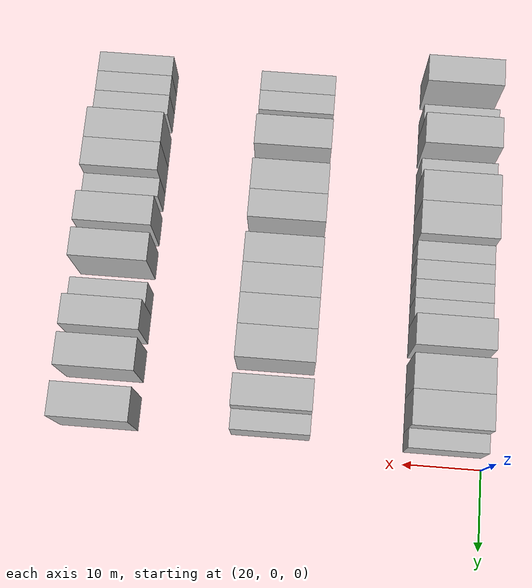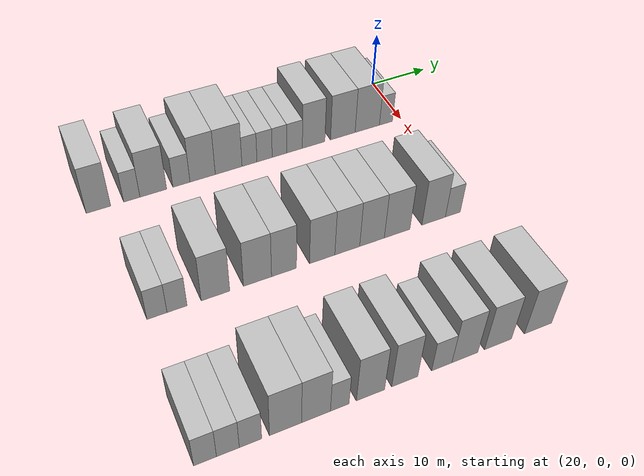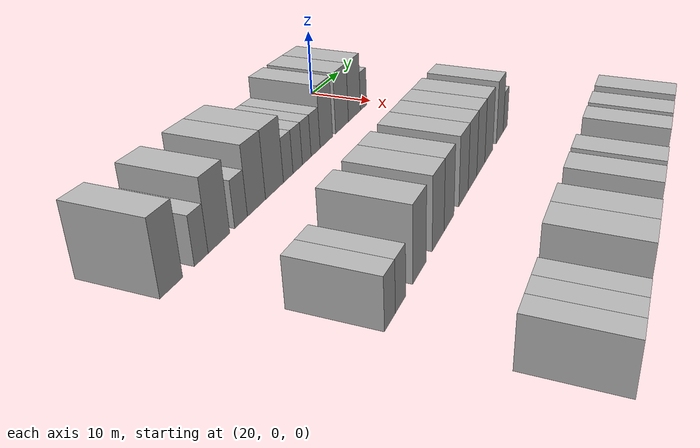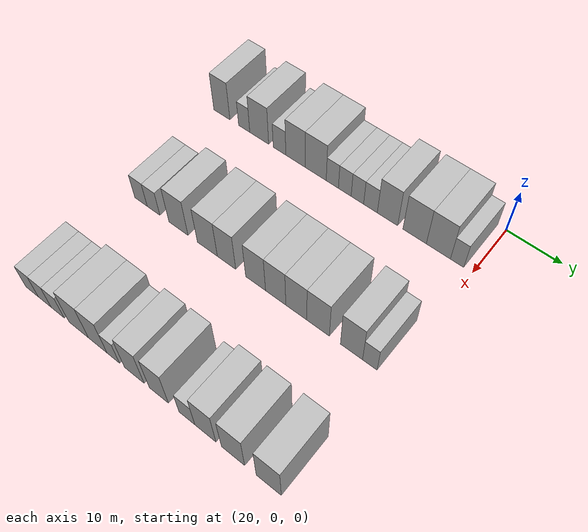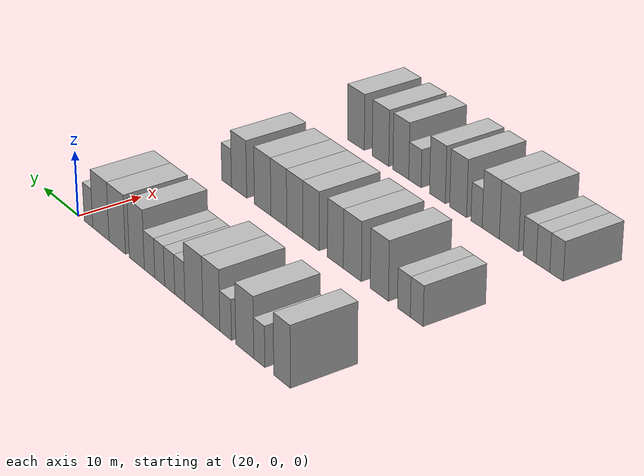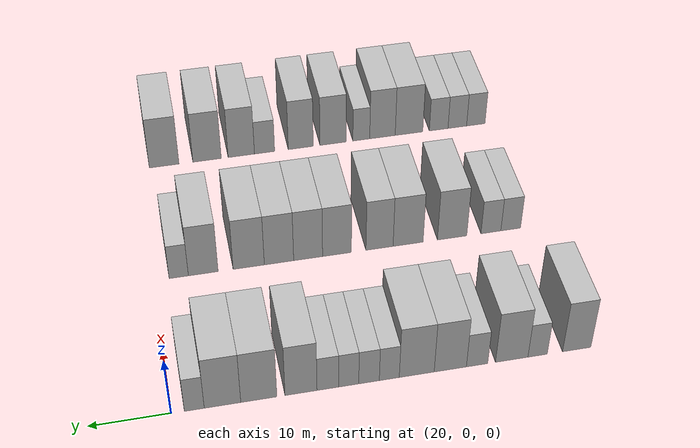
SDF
<sdf version="1.6">
 <world name="default">
  <model name="building_53">
   <static>1</static>
   <pose>25.0000 -51.0194 0 0.000000 0.000000 0.000000</pose>
   <link name="link">
    <pose>0 0 4.50 0 0 0</pose>
    <collision name="collision"><geometry><box><size>10.0000 3.7142 9.0000</size></box></geometry></collision>
    <visual name="visual">
     <cast_shadows>0</cast_shadows>
     <geometry><box><size>10.0000 3.7142 9.0000</size></box></geometry>
     <material>
      <script>
       <uri>model://HANNAS_wall/materials/scripts</uri>
       <uri>model://HANNAS_wall/materials/textures</uri>
       <name>vrc/HANNAS_wall</name>
      </script>
     </material>
    </visual>
   </link>
  </model>
  <model name="building_54">
   <static>1</static>
   <pose>25.0000 -45.9024 0 0.000000 0.000000 0.000000</pose>
   <link name="link">
    <pose>0 0 3.00 0 0 0</pose>
    <collision name="collision"><geometry><box><size>10.0000 2.5198 6.0000</size></box></geometry></collision>
    <visual name="visual">
     <cast_shadows>0</cast_shadows>
     <geometry><box><size>10.0000 2.5198 6.0000</size></box></geometry>
     <material>
      <script>
       <uri>model://HANNAS_wall/materials/scripts</uri>
       <uri>model://HANNAS_wall/materials/textures</uri>
       <name>vrc/HANNAS_wall</name>
      </script>
     </material>
    </visual>
   </link>
  </model>
  <model name="building_55">
   <static>1</static>
   <pose>25.0000 -42.5437 0 0.000000 0.000000 0.000000</pose>
   <link name="link">
    <pose>0 0 4.50 0 0 0</pose>
    <collision name="collision"><geometry><box><size>10.0000 4.1977 9.0000</size></box></geometry></collision>
    <visual name="visual">
     <cast_shadows>0</cast_shadows>
     <geometry><box><size>10.0000 4.1977 9.0000</size></box></geometry>
     <material>
      <script>
       <uri>model://HANNAS_wall/materials/scripts</uri>
       <uri>model://HANNAS_wall/materials/textures</uri>
       <name>vrc/HANNAS_wall</name>
      </script>
     </material>
    </visual>
   </link>
  </model>
  <model name="building_56">
   <static>1</static>
   <pose>25.0000 -38.0750 0 0.000000 0.000000 0.000000</pose>
   <link name="link">
    <pose>0 0 3.00 0 0 0</pose>
    <collision name="collision"><geometry><box><size>10.0000 2.7397 6.0000</size></box></geometry></collision>
    <visual name="visual">
     <cast_shadows>0</cast_shadows>
     <geometry><box><size>10.0000 2.7397 6.0000</size></box></geometry>
     <material>
      <script>
       <uri>model://HANNAS_wall/materials/scripts</uri>
       <uri>model://HANNAS_wall/materials/textures</uri>
       <name>vrc/HANNAS_wall</name>
      </script>
     </material>
    </visual>
   </link>
  </model>
  <model name="building_57">
   <static>1</static>
   <pose>25.0000 -34.6466 0 0.000000 0.000000 0.000000</pose>
   <link name="link">
    <pose>0 0 4.50 0 0 0</pose>
    <collision name="collision"><geometry><box><size>10.0000 4.1170 9.0000</size></box></geometry></collision>
    <visual name="visual">
     <cast_shadows>0</cast_shadows>
     <geometry><box><size>10.0000 4.1170 9.0000</size></box></geometry>
     <material>
      <script>
       <uri>model://HANNAS_wall/materials/scripts</uri>
       <uri>model://HANNAS_wall/materials/textures</uri>
       <name>vrc/HANNAS_wall</name>
      </script>
     </material>
    </visual>
   </link>
  </model>
  <model name="building_58">
   <static>1</static>
   <pose>25.0000 -30.3721 0 0.000000 0.000000 0.000000</pose>
   <link name="link">
    <pose>0 0 4.50 0 0 0</pose>
    <collision name="collision"><geometry><box><size>10.0000 4.4320 9.0000</size></box></geometry></collision>
    <visual name="visual">
     <cast_shadows>0</cast_shadows>
     <geometry><box><size>10.0000 4.4320 9.0000</size></box></geometry>
     <material>
      <script>
       <uri>model://HANNAS_wall/materials/scripts</uri>
       <uri>model://HANNAS_wall/materials/textures</uri>
       <name>vrc/HANNAS_wall</name>
      </script>
     </material>
    </visual>
   </link>
  </model>
  <model name="building_59">
   <static>1</static>
   <pose>25.0000 -26.8985 0 0.000000 0.000000 0.000000</pose>
   <link name="link">
    <pose>0 0 3.00 0 0 0</pose>
    <collision name="collision"><geometry><box><size>10.0000 2.5152 6.0000</size></box></geometry></collision>
    <visual name="visual">
     <cast_shadows>0</cast_shadows>
     <geometry><box><size>10.0000 2.5152 6.0000</size></box></geometry>
     <material>
      <script>
       <uri>model://HANNAS_wall/materials/scripts</uri>
       <uri>model://HANNAS_wall/materials/textures</uri>
       <name>vrc/HANNAS_wall</name>
      </script>
     </material>
    </visual>
   </link>
  </model>
  <model name="building_60">
   <static>1</static>
   <pose>25.0000 -24.3489 0 0.000000 0.000000 0.000000</pose>
   <link name="link">
    <pose>0 0 3.00 0 0 0</pose>
    <collision name="collision"><geometry><box><size>10.0000 2.5841 6.0000</size></box></geometry></collision>
    <visual name="visual">
     <cast_shadows>0</cast_shadows>
     <geometry><box><size>10.0000 2.5841 6.0000</size></box></geometry>
     <material>
      <script>
       <uri>model://HANNAS_wall/materials/scripts</uri>
       <uri>model://HANNAS_wall/materials/textures</uri>
       <name>vrc/HANNAS_wall</name>
      </script>
     </material>
    </visual>
   </link>
  </model>
  <model name="building_61">
   <static>1</static>
   <pose>25.0000 -21.8050 0 0.000000 0.000000 0.000000</pose>
   <link name="link">
    <pose>0 0 3.00 0 0 0</pose>
    <collision name="collision"><geometry><box><size>10.0000 2.5038 6.0000</size></box></geometry></collision>
    <visual name="visual">
     <cast_shadows>0</cast_shadows>
     <geometry><box><size>10.0000 2.5038 6.0000</size></box></geometry>
     <material>
      <script>
       <uri>model://HANNAS_wall/materials/scripts</uri>
       <uri>model://HANNAS_wall/materials/textures</uri>
       <name>vrc/HANNAS_wall</name>
      </script>
     </material>
    </visual>
   </link>
  </model>
  <model name="building_62">
   <static>1</static>
   <pose>25.0000 -19.1997 0 0.000000 0.000000 0.000000</pose>
   <link name="link">
    <pose>0 0 3.00 0 0 0</pose>
    <collision name="collision"><geometry><box><size>10.0000 2.7068 6.0000</size></box></geometry></collision>
    <visual name="visual">
     <cast_shadows>0</cast_shadows>
     <geometry><box><size>10.0000 2.7068 6.0000</size></box></geometry>
     <material>
      <script>
       <uri>model://HANNAS_wall/materials/scripts</uri>
       <uri>model://HANNAS_wall/materials/textures</uri>
       <name>vrc/HANNAS_wall</name>
      </script>
     </material>
    </visual>
   </link>
  </model>
  <model name="building_63">
   <static>1</static>
   <pose>25.0000 -15.8650 0 0.000000 0.000000 0.000000</pose>
   <link name="link">
    <pose>0 0 4.50 0 0 0</pose>
    <collision name="collision"><geometry><box><size>10.0000 3.9626 9.0000</size></box></geometry></collision>
    <visual name="visual">
     <cast_shadows>0</cast_shadows>
     <geometry><box><size>10.0000 3.9626 9.0000</size></box></geometry>
     <material>
      <script>
       <uri>model://HANNAS_wall/materials/scripts</uri>
       <uri>model://HANNAS_wall/materials/textures</uri>
       <name>vrc/HANNAS_wall</name>
      </script>
     </material>
    </visual>
   </link>
  </model>
  <model name="building_64">
   <static>1</static>
   <pose>25.0000 -10.6683 0 0.000000 0.000000 0.000000</pose>
   <link name="link">
    <pose>0 0 4.50 0 0 0</pose>
    <collision name="collision"><geometry><box><size>10.0000 4.4307 9.0000</size></box></geometry></collision>
    <visual name="visual">
     <cast_shadows>0</cast_shadows>
     <geometry><box><size>10.0000 4.4307 9.0000</size></box></geometry>
     <material>
      <script>
       <uri>model://HANNAS_wall/materials/scripts</uri>
       <uri>model://HANNAS_wall/materials/textures</uri>
       <name>vrc/HANNAS_wall</name>
      </script>
     </material>
    </visual>
   </link>
  </model>
  <model name="building_65">
   <static>1</static>
   <pose>25.0000 -6.2278 0 0.000000 0.000000 0.000000</pose>
   <link name="link">
    <pose>0 0 4.50 0 0 0</pose>
    <collision name="collision"><geometry><box><size>10.0000 4.4502 9.0000</size></box></geometry></collision>
    <visual name="visual">
     <cast_shadows>0</cast_shadows>
     <geometry><box><size>10.0000 4.4502 9.0000</size></box></geometry>
     <material>
      <script>
       <uri>model://HANNAS_wall/materials/scripts</uri>
       <uri>model://HANNAS_wall/materials/textures</uri>
       <name>vrc/HANNAS_wall</name>
      </script>
     </material>
    </visual>
   </link>
  </model>
  <model name="building_66">
   <static>1</static>
   <pose>25.0000 -2.7960 0 0.000000 0.000000 0.000000</pose>
   <link name="link">
    <pose>0 0 3.00 0 0 0</pose>
    <collision name="collision"><geometry><box><size>10.0000 2.4134 6.0000</size></box></geometry></collision>
    <visual name="visual">
     <cast_shadows>0</cast_shadows>
     <geometry><box><size>10.0000 2.4134 6.0000</size></box></geometry>
     <material>
      <script>
       <uri>model://HANNAS_wall/materials/scripts</uri>
       <uri>model://HANNAS_wall/materials/textures</uri>
       <name>vrc/HANNAS_wall</name>
      </script>
     </material>
    </visual>
   </link>
  </model>
  <model name="building_182">
   <static>1</static>
   <pose>47.0000 -48.9003 0 0.000000 0.000000 0.000000</pose>
   <link name="link">
    <pose>0 0 3.00 0 0 0</pose>
    <collision name="collision"><geometry><box><size>10.0000 2.7919 6.0000</size></box></geometry></collision>
    <visual name="visual">
     <cast_shadows>0</cast_shadows>
     <geometry><box><size>10.0000 2.7919 6.0000</size></box></geometry>
     <material>
      <script>
       <uri>model://HANNAS_wall/materials/scripts</uri>
       <uri>model://HANNAS_wall/materials/textures</uri>
       <name>vrc/HANNAS_wall</name>
      </script>
     </material>
    </visual>
   </link>
  </model>
  <model name="building_183">
   <static>1</static>
   <pose>47.0000 -46.1006 0 0.000000 0.000000 0.000000</pose>
   <link name="link">
    <pose>0 0 3.00 0 0 0</pose>
    <collision name="collision"><geometry><box><size>10.0000 2.8075 6.0000</size></box></geometry></collision>
    <visual name="visual">
     <cast_shadows>0</cast_shadows>
     <geometry><box><size>10.0000 2.8075 6.0000</size></box></geometry>
     <material>
      <script>
       <uri>model://HANNAS_wall/materials/scripts</uri>
       <uri>model://HANNAS_wall/materials/textures</uri>
       <name>vrc/HANNAS_wall</name>
      </script>
     </material>
    </visual>
   </link>
  </model>
  <model name="building_184">
   <static>1</static>
   <pose>47.0000 -40.6389 0 0.000000 0.000000 0.000000</pose>
   <link name="link">
    <pose>0 0 4.50 0 0 0</pose>
    <collision name="collision"><geometry><box><size>10.0000 4.1160 9.0000</size></box></geometry></collision>
    <visual name="visual">
     <cast_shadows>0</cast_shadows>
     <geometry><box><size>10.0000 4.1160 9.0000</size></box></geometry>
     <material>
      <script>
       <uri>model://HANNAS_wall/materials/scripts</uri>
       <uri>model://HANNAS_wall/materials/textures</uri>
       <name>vrc/HANNAS_wall</name>
      </script>
     </material>
    </visual>
   </link>
  </model>
  <model name="building_185">
   <static>1</static>
   <pose>47.0000 -34.4962 0 0.000000 0.000000 0.000000</pose>
   <link name="link">
    <pose>0 0 4.50 0 0 0</pose>
    <collision name="collision"><geometry><box><size>10.0000 4.1692 9.0000</size></box></geometry></collision>
    <visual name="visual">
     <cast_shadows>0</cast_shadows>
     <geometry><box><size>10.0000 4.1692 9.0000</size></box></geometry>
     <material>
      <script>
       <uri>model://HANNAS_wall/materials/scripts</uri>
       <uri>model://HANNAS_wall/materials/textures</uri>
       <name>vrc/HANNAS_wall</name>
      </script>
     </material>
    </visual>
   </link>
  </model>
  <model name="building_186">
   <static>1</static>
   <pose>47.0000 -30.5336 0 0.000000 0.000000 0.000000</pose>
   <link name="link">
    <pose>0 0 4.50 0 0 0</pose>
    <collision name="collision"><geometry><box><size>10.0000 3.7560 9.0000</size></box></geometry></collision>
    <visual name="visual">
     <cast_shadows>0</cast_shadows>
     <geometry><box><size>10.0000 3.7560 9.0000</size></box></geometry>
     <material>
      <script>
       <uri>model://HANNAS_wall/materials/scripts</uri>
       <uri>model://HANNAS_wall/materials/textures</uri>
       <name>vrc/HANNAS_wall</name>
      </script>
     </material>
    </visual>
   </link>
  </model>
  <model name="building_187">
   <static>1</static>
   <pose>47.0000 -24.6870 0 0.000000 0.000000 0.000000</pose>
   <link name="link">
    <pose>0 0 4.50 0 0 0</pose>
    <collision name="collision"><geometry><box><size>10.0000 3.9372 9.0000</size></box></geometry></collision>
    <visual name="visual">
     <cast_shadows>0</cast_shadows>
     <geometry><box><size>10.0000 3.9372 9.0000</size></box></geometry>
     <material>
      <script>
       <uri>model://HANNAS_wall/materials/scripts</uri>
       <uri>model://HANNAS_wall/materials/textures</uri>
       <name>vrc/HANNAS_wall</name>
      </script>
     </material>
    </visual>
   </link>
  </model>
  <model name="building_188">
   <static>1</static>
   <pose>47.0000 -20.7539 0 0.000000 0.000000 0.000000</pose>
   <link name="link">
    <pose>0 0 4.50 0 0 0</pose>
    <collision name="collision"><geometry><box><size>10.0000 3.9291 9.0000</size></box></geometry></collision>
    <visual name="visual">
     <cast_shadows>0</cast_shadows>
     <geometry><box><size>10.0000 3.9291 9.0000</size></box></geometry>
     <material>
      <script>
       <uri>model://HANNAS_wall/materials/scripts</uri>
       <uri>model://HANNAS_wall/materials/textures</uri>
       <name>vrc/HANNAS_wall</name>
      </script>
     </material>
    </visual>
   </link>
  </model>
  <model name="building_189">
   <static>1</static>
   <pose>47.0000 -16.8063 0 0.000000 0.000000 0.000000</pose>
   <link name="link">
    <pose>0 0 4.50 0 0 0</pose>
    <collision name="collision"><geometry><box><size>10.0000 3.9661 9.0000</size></box></geometry></collision>
    <visual name="visual">
     <cast_shadows>0</cast_shadows>
     <geometry><box><size>10.0000 3.9661 9.0000</size></box></geometry>
     <material>
      <script>
       <uri>model://HANNAS_wall/materials/scripts</uri>
       <uri>model://HANNAS_wall/materials/textures</uri>
       <name>vrc/HANNAS_wall</name>
      </script>
     </material>
    </visual>
   </link>
  </model>
  <model name="building_190">
   <static>1</static>
   <pose>47.0000 -12.7256 0 0.000000 0.000000 0.000000</pose>
   <link name="link">
    <pose>0 0 4.50 0 0 0</pose>
    <collision name="collision"><geometry><box><size>10.0000 4.1952 9.0000</size></box></geometry></collision>
    <visual name="visual">
     <cast_shadows>0</cast_shadows>
     <geometry><box><size>10.0000 4.1952 9.0000</size></box></geometry>
     <material>
      <script>
       <uri>model://HANNAS_wall/materials/scripts</uri>
       <uri>model://HANNAS_wall/materials/textures</uri>
       <name>vrc/HANNAS_wall</name>
      </script>
     </material>
    </visual>
   </link>
  </model>
  <model name="building_191">
   <static>1</static>
   <pose>47.0000 -6.6469 0 0.000000 0.000000 0.000000</pose>
   <link name="link">
    <pose>0 0 4.50 0 0 0</pose>
    <collision name="collision"><geometry><box><size>10.0000 3.9621 9.0000</size></box></geometry></collision>
    <visual name="visual">
     <cast_shadows>0</cast_shadows>
     <geometry><box><size>10.0000 3.9621 9.0000</size></box></geometry>
     <material>
      <script>
       <uri>model://HANNAS_wall/materials/scripts</uri>
       <uri>model://HANNAS_wall/materials/textures</uri>
       <name>vrc/HANNAS_wall</name>
      </script>
     </material>
    </visual>
   </link>
  </model>
  <model name="building_192">
   <static>1</static>
   <pose>47.0000 -3.3890 0 0.000000 0.000000 0.000000</pose>
   <link name="link">
    <pose>0 0 3.00 0 0 0</pose>
    <collision name="collision"><geometry><box><size>10.0000 2.5537 6.0000</size></box></geometry></collision>
    <visual name="visual">
     <cast_shadows>0</cast_shadows>
     <geometry><box><size>10.0000 2.5537 6.0000</size></box></geometry>
     <material>
      <script>
       <uri>model://HANNAS_wall/materials/scripts</uri>
       <uri>model://HANNAS_wall/materials/textures</uri>
       <name>vrc/HANNAS_wall</name>
      </script>
     </material>
    </visual>
   </link>
  </model>
  <model name="building_298">
   <static>1</static>
   <pose>69.0000 -50.0200 0 0.000000 0.000000 0.000000</pose>
   <link name="link">
    <pose>0 0 3.00 0 0 0</pose>
    <collision name="collision"><geometry><box><size>10.0000 2.8169 6.0000</size></box></geometry></collision>
    <visual name="visual">
     <cast_shadows>0</cast_shadows>
     <geometry><box><size>10.0000 2.8169 6.0000</size></box></geometry>
     <material>
      <script>
       <uri>model://HANNAS_wall/materials/scripts</uri>
       <uri>model://HANNAS_wall/materials/textures</uri>
       <name>vrc/HANNAS_wall</name>
      </script>
     </material>
    </visual>
   </link>
  </model>
  <model name="building_299">
   <static>1</static>
   <pose>69.0000 -47.1899 0 0.000000 0.000000 0.000000</pose>
   <link name="link">
    <pose>0 0 3.00 0 0 0</pose>
    <collision name="collision"><geometry><box><size>10.0000 2.8433 6.0000</size></box></geometry></collision>
    <visual name="visual">
     <cast_shadows>0</cast_shadows>
     <geometry><box><size>10.0000 2.8433 6.0000</size></box></geometry>
     <material>
      <script>
       <uri>model://HANNAS_wall/materials/scripts</uri>
       <uri>model://HANNAS_wall/materials/textures</uri>
       <name>vrc/HANNAS_wall</name>
      </script>
     </material>
    </visual>
   </link>
  </model>
  <model name="building_300">
   <static>1</static>
   <pose>69.0000 -44.3497 0 0.000000 0.000000 0.000000</pose>
   <link name="link">
    <pose>0 0 3.00 0 0 0</pose>
    <collision name="collision"><geometry><box><size>10.0000 2.8371 6.0000</size></box></geometry></collision>
    <visual name="visual">
     <cast_shadows>0</cast_shadows>
     <geometry><box><size>10.0000 2.8371 6.0000</size></box></geometry>
     <material>
      <script>
       <uri>model://HANNAS_wall/materials/scripts</uri>
       <uri>model://HANNAS_wall/materials/textures</uri>
       <name>vrc/HANNAS_wall</name>
      </script>
     </material>
    </visual>
   </link>
  </model>
  <model name="building_301">
   <static>1</static>
   <pose>69.0000 -39.8486 0 0.000000 0.000000 0.000000</pose>
   <link name="link">
    <pose>0 0 4.50 0 0 0</pose>
    <collision name="collision"><geometry><box><size>10.0000 4.1651 9.0000</size></box></geometry></collision>
    <visual name="visual">
     <cast_shadows>0</cast_shadows>
     <geometry><box><size>10.0000 4.1651 9.0000</size></box></geometry>
     <material>
      <script>
       <uri>model://HANNAS_wall/materials/scripts</uri>
       <uri>model://HANNAS_wall/materials/textures</uri>
       <name>vrc/HANNAS_wall</name>
      </script>
     </material>
    </visual>
   </link>
  </model>
  <model name="building_302">
   <static>1</static>
   <pose>69.0000 -35.8485 0 0.000000 0.000000 0.000000</pose>
   <link name="link">
    <pose>0 0 4.50 0 0 0</pose>
    <collision name="collision"><geometry><box><size>10.0000 3.8351 9.0000</size></box></geometry></collision>
    <visual name="visual">
     <cast_shadows>0</cast_shadows>
     <geometry><box><size>10.0000 3.8351 9.0000</size></box></geometry>
     <material>
      <script>
       <uri>model://HANNAS_wall/materials/scripts</uri>
       <uri>model://HANNAS_wall/materials/textures</uri>
       <name>vrc/HANNAS_wall</name>
      </script>
     </material>
    </visual>
   </link>
  </model>
  <model name="building_303">
   <static>1</static>
   <pose>69.0000 -32.6710 0 0.000000 0.000000 0.000000</pose>
   <link name="link">
    <pose>0 0 3.00 0 0 0</pose>
    <collision name="collision"><geometry><box><size>10.0000 2.5200 6.0000</size></box></geometry></collision>
    <visual name="visual">
     <cast_shadows>0</cast_shadows>
     <geometry><box><size>10.0000 2.5200 6.0000</size></box></geometry>
     <material>
      <script>
       <uri>model://HANNAS_wall/materials/scripts</uri>
       <uri>model://HANNAS_wall/materials/textures</uri>
       <name>vrc/HANNAS_wall</name>
      </script>
     </material>
    </visual>
   </link>
  </model>
  <model name="building_304">
   <static>1</static>
   <pose>69.0000 -28.4626 0 0.000000 0.000000 0.000000</pose>
   <link name="link">
    <pose>0 0 4.50 0 0 0</pose>
    <collision name="collision"><geometry><box><size>10.0000 3.8969 9.0000</size></box></geometry></collision>
    <visual name="visual">
     <cast_shadows>0</cast_shadows>
     <geometry><box><size>10.0000 3.8969 9.0000</size></box></geometry>
     <material>
      <script>
       <uri>model://HANNAS_wall/materials/scripts</uri>
       <uri>model://HANNAS_wall/materials/textures</uri>
       <name>vrc/HANNAS_wall</name>
      </script>
     </material>
    </visual>
   </link>
  </model>
  <model name="building_305">
   <static>1</static>
   <pose>69.0000 -23.6665 0 0.000000 0.000000 0.000000</pose>
   <link name="link">
    <pose>0 0 4.50 0 0 0</pose>
    <collision name="collision"><geometry><box><size>10.0000 3.6952 9.0000</size></box></geometry></collision>
    <visual name="visual">
     <cast_shadows>0</cast_shadows>
     <geometry><box><size>10.0000 3.6952 9.0000</size></box></geometry>
     <material>
      <script>
       <uri>model://HANNAS_wall/materials/scripts</uri>
       <uri>model://HANNAS_wall/materials/textures</uri>
       <name>vrc/HANNAS_wall</name>
      </script>
     </material>
    </visual>
   </link>
  </model>
  <model name="building_306">
   <static>1</static>
   <pose>69.0000 -18.3402 0 0.000000 0.000000 0.000000</pose>
   <link name="link">
    <pose>0 0 3.00 0 0 0</pose>
    <collision name="collision"><geometry><box><size>10.0000 2.9575 6.0000</size></box></geometry></collision>
    <visual name="visual">
     <cast_shadows>0</cast_shadows>
     <geometry><box><size>10.0000 2.9575 6.0000</size></box></geometry>
     <material>
      <script>
       <uri>model://HANNAS_wall/materials/scripts</uri>
       <uri>model://HANNAS_wall/materials/textures</uri>
       <name>vrc/HANNAS_wall</name>
      </script>
     </material>
    </visual>
   </link>
  </model>
  <model name="building_307">
   <static>1</static>
   <pose>69.0000 -14.9384 0 0.000000 0.000000 0.000000</pose>
   <link name="link">
    <pose>0 0 4.50 0 0 0</pose>
    <collision name="collision"><geometry><box><size>10.0000 3.8461 9.0000</size></box></geometry></collision>
    <visual name="visual">
     <cast_shadows>0</cast_shadows>
     <geometry><box><size>10.0000 3.8461 9.0000</size></box></geometry>
     <material>
      <script>
       <uri>model://HANNAS_wall/materials/scripts</uri>
       <uri>model://HANNAS_wall/materials/textures</uri>
       <name>vrc/HANNAS_wall</name>
      </script>
     </material>
    </visual>
   </link>
  </model>
  <model name="building_308">
   <static>1</static>
   <pose>69.0000 -9.9584 0 0.000000 0.000000 0.000000</pose>
   <link name="link">
    <pose>0 0 4.50 0 0 0</pose>
    <collision name="collision"><geometry><box><size>10.0000 4.1141 9.0000</size></box></geometry></collision>
    <visual name="visual">
     <cast_shadows>0</cast_shadows>
     <geometry><box><size>10.0000 4.1141 9.0000</size></box></geometry>
     <material>
      <script>
       <uri>model://HANNAS_wall/materials/scripts</uri>
       <uri>model://HANNAS_wall/materials/textures</uri>
       <name>vrc/HANNAS_wall</name>
      </script>
     </material>
    </visual>
   </link>
  </model>
  <model name="building_309">
   <static>1</static>
   <pose>69.0000 -3.7661 0 0.000000 0.000000 0.000000</pose>
   <link name="link">
    <pose>0 0 4.50 0 0 0</pose>
    <collision name="collision"><geometry><box><size>10.0000 4.2704 9.0000</size></box></geometry></collision>
    <visual name="visual">
     <cast_shadows>0</cast_shadows>
     <geometry><box><size>10.0000 4.2704 9.0000</size></box></geometry>
     <material>
      <script>
       <uri>model://HANNAS_wall/materials/scripts</uri>
       <uri>model://HANNAS_wall/materials/textures</uri>
       <name>vrc/HANNAS_wall</name>
      </script>
     </material>
    </visual>
   </link>
  </model>
 </world>
</sdf>
